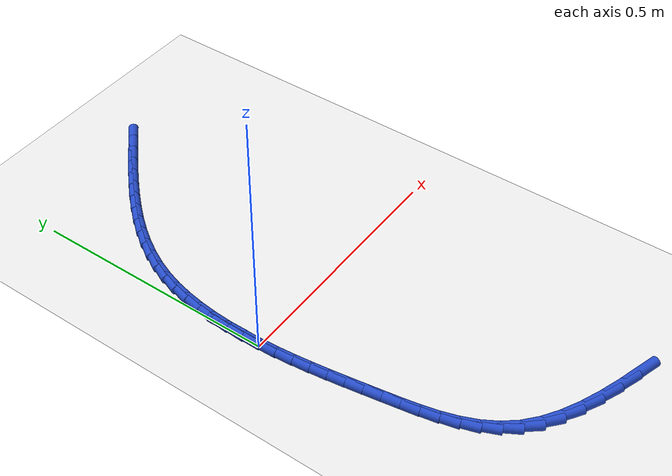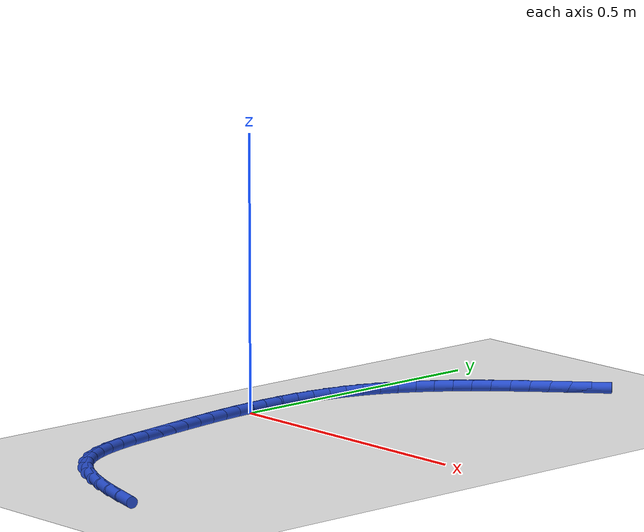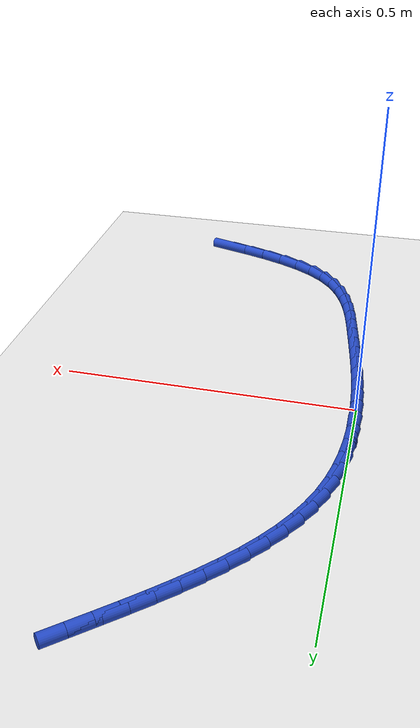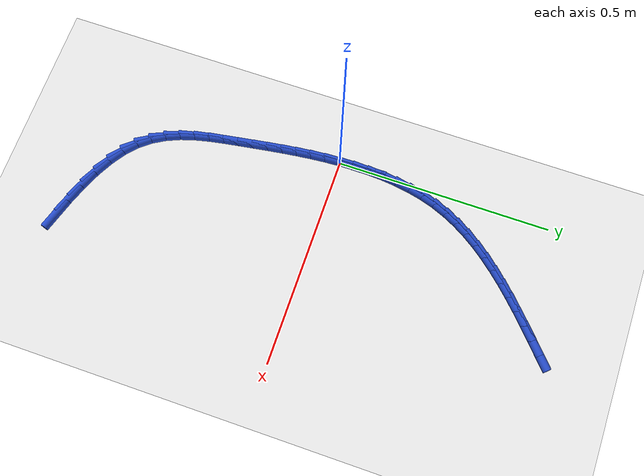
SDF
<sdf version="1.6">
 <world name="default">
  <model name="ground_plane">
   <static>1</static>
   <link name="link">
    <collision name="collision">
     <geometry><plane><normal>0 0 1</normal><size>100 100</size></plane></geometry>
     <surface><friction><ode><mu>100</mu><mu2>50</mu2></ode></friction></surface>
    </collision>
    <visual name="visual">
     <cast_shadows>0</cast_shadows>
     <geometry><plane><normal>0 0 1</normal><size>100 100</size></plane></geometry>
     <material>
      <script><uri>file://media/materials/scripts/gazebo.material</uri><name>Gazebo/WhiteGlow</name></script>
     </material>
    </visual>
   </link>
  </model>
  <model name="line">
   <link name="link_0">
    <pose>1.214306433183765e-17 -5.551115123125783e-17 0.01 0 1.57 -1.544926847063853</pose>
    <collision name="collision">
     <geometry><cylinder><radius>0.01</radius><length>0.08</length></cylinder></geometry>
    </collision>
    <visual name="visual">
     <material>
      <script><name>Gazebo/Blue</name><uri>file://media/materials/scripts/gazebo.material</uri></script>
     </material>
     <geometry><cylinder><radius>0.01</radius><length>0.08</length></cylinder></geometry>
    </visual>
   </link>
   <link name="link_1">
    <pose>-0.0008951007464306239 0.03459292845237338 0.01 0 1.57 1.5587647873589767</pose>
    <collision name="collision">
     <geometry><cylinder><radius>0.01</radius><length>0.08</length></cylinder></geometry>
    </collision>
    <visual name="visual">
     <material>
      <script><name>Gazebo/Blue</name><uri>file://media/materials/scripts/gazebo.material</uri></script>
     </material>
     <geometry><cylinder><radius>0.01</radius><length>0.08</length></cylinder></geometry>
    </visual>
   </link>
   <link name="link_2">
    <pose>-0.00047655189180878695 0.06937888918215812 0.01 0 1.57 1.5151115104201591</pose>
    <collision name="collision">
     <geometry><cylinder><radius>0.01</radius><length>0.08</length></cylinder></geometry>
    </collision>
    <visual name="visual">
     <material>
      <script><name>Gazebo/Blue</name><uri>file://media/materials/scripts/gazebo.material</uri></script>
     </material>
     <geometry><cylinder><radius>0.01</radius><length>0.08</length></cylinder></geometry>
    </visual>
   </link>
   <link name="link_3">
    <pose>0.0014596562780407518 0.10411378853131274 0.01 0 1.57 1.464982097356111</pose>
    <collision name="collision">
     <geometry><cylinder><radius>0.01</radius><length>0.08</length></cylinder></geometry>
    </collision>
    <visual name="visual">
     <material>
      <script><name>Gazebo/Blue</name><uri>file://media/materials/scripts/gazebo.material</uri></script>
     </material>
     <geometry><cylinder><radius>0.01</radius><length>0.08</length></cylinder></geometry>
    </visual>
   </link>
   <link name="link_4">
    <pose>0.0051175334772932245 0.13855353284179592 0.01 0 1.57 1.407557626411429</pose>
    <collision name="collision">
     <geometry><cylinder><radius>0.01</radius><length>0.08</length></cylinder></geometry>
    </collision>
    <visual name="visual">
     <material>
      <script><name>Gazebo/Blue</name><uri>file://media/materials/scripts/gazebo.material</uri></script>
     </material>
     <geometry><cylinder><radius>0.01</radius><length>0.08</length></cylinder></geometry>
    </visual>
   </link>
   <link name="link_5">
    <pose>0.010701089420123865 0.1724540284555663 0.01 0 1.57 1.3419679618454743</pose>
    <collision name="collision">
     <geometry><cylinder><radius>0.01</radius><length>0.08</length></cylinder></geometry>
    </collision>
    <visual name="visual">
     <material>
      <script><name>Gazebo/Blue</name><uri>file://media/materials/scripts/gazebo.material</uri></script>
     </material>
     <geometry><cylinder><radius>0.01</radius><length>0.08</length></cylinder></geometry>
    </visual>
   </link>
   <link name="link_6">
    <pose>0.018414333820707895 0.20557118171458244 0.01 0 1.57 1.2673748061256054</pose>
    <collision name="collision">
     <geometry><cylinder><radius>0.01</radius><length>0.08</length></cylinder></geometry>
    </collision>
    <visual name="visual">
     <material>
      <script><name>Gazebo/Blue</name><uri>file://media/materials/scripts/gazebo.material</uri></script>
     </material>
     <geometry><cylinder><radius>0.01</radius><length>0.08</length></cylinder></geometry>
    </visual>
   </link>
   <link name="link_7">
    <pose>0.02846127639322056 0.23766089896080309 0.01 0 1.57 1.18531420956852</pose>
    <collision name="collision">
     <geometry><cylinder><radius>0.01</radius><length>0.08</length></cylinder></geometry>
    </collision>
    <visual name="visual">
     <material>
      <script><name>Gazebo/Blue</name><uri>file://media/materials/scripts/gazebo.material</uri></script>
     </material>
     <geometry><cylinder><radius>0.01</radius><length>0.08</length></cylinder></geometry>
    </visual>
   </link>
   <link name="link_8">
    <pose>0.04098678274133821 0.26852836624558746 0.01 0 1.57 1.106307680856895</pose>
    <collision name="collision">
     <geometry><cylinder><radius>0.01</radius><length>0.08</length></cylinder></geometry>
    </collision>
    <visual name="visual">
     <material>
      <script><name>Gazebo/Blue</name><uri>file://media/materials/scripts/gazebo.material</uri></script>
     </material>
     <geometry><cylinder><radius>0.01</radius><length>0.08</length></cylinder></geometry>
    </visual>
   </link>
   <link name="link_9">
    <pose>0.055858635920563095 0.2982096387184829 0.01 0 1.57 1.03435345917394</pose>
    <collision name="collision">
     <geometry><cylinder><radius>0.01</radius><length>0.08</length></cylinder></geometry>
    </collision>
    <visual name="visual">
     <material>
      <script><name>Gazebo/Blue</name><uri>file://media/materials/scripts/gazebo.material</uri></script>
     </material>
     <geometry><cylinder><radius>0.01</radius><length>0.08</length></cylinder></geometry>
    </visual>
   </link>
   <link name="link_10">
    <pose>0.07286354577327306 0.3268083228769097 0.01 0 1.57 0.970081321235818</pose>
    <collision name="collision">
     <geometry><cylinder><radius>0.01</radius><length>0.08</length></cylinder></geometry>
    </collision>
    <visual name="visual">
     <material>
      <script><name>Gazebo/Blue</name><uri>file://media/materials/scripts/gazebo.material</uri></script>
     </material>
     <geometry><cylinder><radius>0.01</radius><length>0.08</length></cylinder></geometry>
    </visual>
   </link>
   <link name="link_11">
    <pose>0.09178821202149028 0.3544280336507117 0.01 0 1.57 0.9137269030067781</pose>
    <collision name="collision">
     <geometry><cylinder><radius>0.01</radius><length>0.08</length></cylinder></geometry>
    </collision>
    <visual name="visual">
     <material>
      <script><name>Gazebo/Blue</name><uri>file://media/materials/scripts/gazebo.material</uri></script>
     </material>
     <geometry><cylinder><radius>0.01</radius><length>0.08</length></cylinder></geometry>
    </visual>
   </link>
   <link name="link_12">
    <pose>0.11241933438723695 0.38117238596973274 0.01 0 1.57 0.8652401237360117</pose>
    <collision name="collision">
     <geometry><cylinder><radius>0.01</radius><length>0.08</length></cylinder></geometry>
    </collision>
    <visual name="visual">
     <material>
      <script><name>Gazebo/Blue</name><uri>file://media/materials/scripts/gazebo.material</uri></script>
     </material>
     <geometry><cylinder><radius>0.01</radius><length>0.08</length></cylinder></geometry>
    </visual>
   </link>
   <link name="link_13">
    <pose>0.13454361259253514 0.40714499476381644 0.01 0 1.57 0.8243929727467321</pose>
    <collision name="collision">
     <geometry><cylinder><radius>0.01</radius><length>0.08</length></cylinder></geometry>
    </collision>
    <visual name="visual">
     <material>
      <script><name>Gazebo/Blue</name><uri>file://media/materials/scripts/gazebo.material</uri></script>
     </material>
     <geometry><cylinder><radius>0.01</radius><length>0.08</length></cylinder></geometry>
    </visual>
   </link>
   <link name="link_14">
    <pose>0.157947746359407 0.4324494749628068 0.01 0 1.57 0.7908700432687833</pose>
    <collision name="collision">
     <geometry><cylinder><radius>0.01</radius><length>0.08</length></cylinder></geometry>
    </collision>
    <visual name="visual">
     <material>
      <script><name>Gazebo/Blue</name><uri>file://media/materials/scripts/gazebo.material</uri></script>
     </material>
     <geometry><cylinder><radius>0.01</radius><length>0.08</length></cylinder></geometry>
    </visual>
   </link>
   <link name="link_15">
    <pose>0.18241843540987476 0.4571894414965475 0.01 0 1.57 0.76433650375186</pose>
    <collision name="collision">
     <geometry><cylinder><radius>0.01</radius><length>0.08</length></cylinder></geometry>
    </collision>
    <visual name="visual">
     <material>
      <script><name>Gazebo/Blue</name><uri>file://media/materials/scripts/gazebo.material</uri></script>
     </material>
     <geometry><cylinder><radius>0.01</radius><length>0.08</length></cylinder></geometry>
    </visual>
   </link>
   <link name="link_16">
    <pose>0.2077423794659606 0.4814685092948824 0.01 0 1.57 0.7444851171360718</pose>
    <collision name="collision">
     <geometry><cylinder><radius>0.01</radius><length>0.08</length></cylinder></geometry>
    </collision>
    <visual name="visual">
     <material>
      <script><name>Gazebo/Blue</name><uri>file://media/materials/scripts/gazebo.material</uri></script>
     </material>
     <geometry><cylinder><radius>0.01</radius><length>0.08</length></cylinder></geometry>
    </visual>
   </link>
   <link name="link_17">
    <pose>0.2337062782496866 0.5053902932876554 0.01 0 1.57 0.7310667381546199</pose>
    <collision name="collision">
     <geometry><cylinder><radius>0.01</radius><length>0.08</length></cylinder></geometry>
    </collision>
    <visual name="visual">
     <material>
      <script><name>Gazebo/Blue</name><uri>file://media/materials/scripts/gazebo.material</uri></script>
     </material>
     <geometry><cylinder><radius>0.01</radius><length>0.08</length></cylinder></geometry>
    </visual>
   </link>
   <link name="link_18">
    <pose>0.26009683148307483 0.52905840840471 0.01 0 1.57 0.7239090352658616</pose>
    <collision name="collision">
     <geometry><cylinder><radius>0.01</radius><length>0.08</length></cylinder></geometry>
    </collision>
    <visual name="visual">
     <material>
      <script><name>Gazebo/Blue</name><uri>file://media/materials/scripts/gazebo.material</uri></script>
     </material>
     <geometry><cylinder><radius>0.01</radius><length>0.08</length></cylinder></geometry>
    </visual>
   </link>
   <link name="link_19">
    <pose>0.2867007388881476 0.5525764695758903 0.01 0 1.57 0.722927332170416</pose>
    <collision name="collision">
     <geometry><cylinder><radius>0.01</radius><length>0.08</length></cylinder></geometry>
    </collision>
    <visual name="visual">
     <material>
      <script><name>Gazebo/Blue</name><uri>file://media/materials/scripts/gazebo.material</uri></script>
     </material>
     <geometry><cylinder><radius>0.01</radius><length>0.08</length></cylinder></geometry>
    </visual>
   </link>
   <link name="link_240">
    <pose>0.33338548705270016 -0.5713293198169863 0.01 0 1.57 -0.30031011118804646</pose>
    <collision name="collision">
     <geometry><cylinder><radius>0.01</radius><length>0.08</length></cylinder></geometry>
    </collision>
    <visual name="visual">
     <material>
      <script><name>Gazebo/Blue</name><uri>file://media/materials/scripts/gazebo.material</uri></script>
     </material>
     <geometry><cylinder><radius>0.01</radius><length>0.08</length></cylinder></geometry>
    </visual>
   </link>
   <link name="link_241">
    <pose>0.28970771189138583 -0.5578033581630745 0.01 0 1.57 -0.34139983252278583</pose>
    <collision name="collision">
     <geometry><cylinder><radius>0.01</radius><length>0.08</length></cylinder></geometry>
    </collision>
    <visual name="visual">
     <material>
      <script><name>Gazebo/Blue</name><uri>file://media/materials/scripts/gazebo.material</uri></script>
     </material>
     <geometry><cylinder><radius>0.01</radius><length>0.08</length></cylinder></geometry>
    </visual>
   </link>
   <link name="link_242">
    <pose>0.24765160760734883 -0.5428602921916693 0.01 0 1.57 -0.3989693948722473</pose>
    <collision name="collision">
     <geometry><cylinder><radius>0.01</radius><length>0.08</length></cylinder></geometry>
    </collision>
    <visual name="visual">
     <material>
      <script><name>Gazebo/Blue</name><uri>file://media/materials/scripts/gazebo.material</uri></script>
     </material>
     <geometry><cylinder><radius>0.01</radius><length>0.08</length></cylinder></geometry>
    </visual>
   </link>
   <link name="link_243">
    <pose>0.2080305556108389 -0.5261568919849919 0.01 0 1.57 -0.4772052772116582</pose>
    <collision name="collision">
     <geometry><cylinder><radius>0.01</radius><length>0.08</length></cylinder></geometry>
    </collision>
    <visual name="visual">
     <material>
      <script><name>Gazebo/Blue</name><uri>file://media/materials/scripts/gazebo.material</uri></script>
     </material>
     <geometry><cylinder><radius>0.01</radius><length>0.08</length></cylinder></geometry>
    </visual>
   </link>
   <link name="link_244">
    <pose>0.1716579373121056 -0.5073499276252631 0.01 0 1.57 -0.5818327769057862</pose>
    <collision name="collision">
     <geometry><cylinder><radius>0.01</radius><length>0.08</length></cylinder></geometry>
    </collision>
    <visual name="visual">
     <material>
      <script><name>Gazebo/Blue</name><uri>file://media/materials/scripts/gazebo.material</uri></script>
     </material>
     <geometry><cylinder><radius>0.01</radius><length>0.08</length></cylinder></geometry>
    </visual>
   </link>
   <link name="link_245">
    <pose>0.1393471341213978 -0.4860961691947033 0.01 0 1.57 -0.7195972061733653</pose>
    <collision name="collision">
     <geometry><cylinder><radius>0.01</radius><length>0.08</length></cylinder></geometry>
    </collision>
    <visual name="visual">
     <material>
      <script><name>Gazebo/Blue</name><uri>file://media/materials/scripts/gazebo.material</uri></script>
     </material>
     <geometry><cylinder><radius>0.01</radius><length>0.08</length></cylinder></geometry>
    </visual>
   </link>
   <link name="link_246">
    <pose>0.11191121615702132 -0.46205255133405543 0.01 0 1.57 -0.8844464568836002</pose>
    <collision name="collision">
     <geometry><cylinder><radius>0.01</radius><length>0.08</length></cylinder></geometry>
    </collision>
    <visual name="visual">
     <material>
      <script><name>Gazebo/Blue</name><uri>file://media/materials/scripts/gazebo.material</uri></script>
     </material>
     <geometry><cylinder><radius>0.01</radius><length>0.08</length></cylinder></geometry>
    </visual>
   </link>
   <link name="link_247">
    <pose>0.08980349994138774 -0.43506618552743836 0.01 0 1.57 -1.0387919043585212</pose>
    <collision name="collision">
     <geometry><cylinder><radius>0.01</radius><length>0.08</length></cylinder></geometry>
    </collision>
    <visual name="visual">
     <material>
      <script><name>Gazebo/Blue</name><uri>file://media/materials/scripts/gazebo.material</uri></script>
     </material>
     <geometry><cylinder><radius>0.01</radius><length>0.08</length></cylinder></geometry>
    </visual>
   </link>
   <link name="link_248">
    <pose>0.07242445377840216 -0.4055407512906413 0.01 0 1.57 -1.1681558380158101</pose>
    <collision name="collision">
     <geometry><cylinder><radius>0.01</radius><length>0.08</length></cylinder></geometry>
    </collision>
    <visual name="visual">
     <material>
      <script><name>Gazebo/Blue</name><uri>file://media/materials/scripts/gazebo.material</uri></script>
     </material>
     <geometry><cylinder><radius>0.01</radius><length>0.08</length></cylinder></geometry>
    </visual>
   </link>
   <link name="link_249">
    <pose>0.05898295471390981 -0.37398120918596034 0.01 0 1.57 -1.2691547961940361</pose>
    <collision name="collision">
     <geometry><cylinder><radius>0.01</radius><length>0.08</length></cylinder></geometry>
    </collision>
    <visual name="visual">
     <material>
      <script><name>Gazebo/Blue</name><uri>file://media/materials/scripts/gazebo.material</uri></script>
     </material>
     <geometry><cylinder><radius>0.01</radius><length>0.08</length></cylinder></geometry>
    </visual>
   </link>
   <link name="link_250">
    <pose>0.04868787979375601 -0.3408925197756915 0.01 0 1.57 -1.342117628590862</pose>
    <collision name="collision">
     <geometry><cylinder><radius>0.01</radius><length>0.08</length></cylinder></geometry>
    </collision>
    <visual name="visual">
     <material>
      <script><name>Gazebo/Blue</name><uri>file://media/materials/scripts/gazebo.material</uri></script>
     </material>
     <geometry><cylinder><radius>0.01</radius><length>0.08</length></cylinder></geometry>
    </visual>
   </link>
   <link name="link_251">
    <pose>0.040748106063786045 -0.3067796436221313 0.01 0 1.57 -1.3887397920740827</pose>
    <collision name="collision">
     <geometry><cylinder><radius>0.01</radius><length>0.08</length></cylinder></geometry>
    </collision>
    <visual name="visual">
     <material>
      <script><name>Gazebo/Blue</name><uri>file://media/materials/scripts/gazebo.material</uri></script>
     </material>
     <geometry><cylinder><radius>0.01</radius><length>0.08</length></cylinder></geometry>
    </visual>
   </link>
   <link name="link_252">
    <pose>0.034372510569845 -0.27214754128757446 0.01 0 1.57 -1.4104783950246378</pose>
    <collision name="collision">
     <geometry><cylinder><radius>0.01</radius><length>0.08</length></cylinder></geometry>
    </collision>
    <visual name="visual">
     <material>
      <script><name>Gazebo/Blue</name><uri>file://media/materials/scripts/gazebo.material</uri></script>
     </material>
     <geometry><cylinder><radius>0.01</radius><length>0.08</length></cylinder></geometry>
    </visual>
   </link>
   <link name="link_253">
    <pose>0.028769993278331553 -0.2375011579891918 0.01 0 1.57 -1.413496989971405</pose>
    <collision name="collision">
     <geometry><cylinder><radius>0.01</radius><length>0.08</length></cylinder></geometry>
    </collision>
    <visual name="visual">
     <material>
      <script><name>Gazebo/Blue</name><uri>file://media/materials/scripts/gazebo.material</uri></script>
     </material>
     <geometry><cylinder><radius>0.01</radius><length>0.08</length></cylinder></geometry>
    </visual>
   </link>
   <link name="link_254">
    <pose>0.02333306853936996 -0.20322251057753726 0.01 0 1.57 -1.4173311850333505</pose>
    <collision name="collision">
     <geometry><cylinder><radius>0.01</radius><length>0.08</length></cylinder></geometry>
    </collision>
    <visual name="visual">
     <material>
      <script><name>Gazebo/Blue</name><uri>file://media/materials/scripts/gazebo.material</uri></script>
     </material>
     <geometry><cylinder><radius>0.01</radius><length>0.08</length></cylinder></geometry>
    </visual>
   </link>
   <link name="link_255">
    <pose>0.018081786474317088 -0.1692734857053902 0.01 0 1.57 -1.4262689390594432</pose>
    <collision name="collision">
     <geometry><cylinder><radius>0.01</radius><length>0.08</length></cylinder></geometry>
    </collision>
    <visual name="visual">
     <material>
      <script><name>Gazebo/Blue</name><uri>file://media/materials/scripts/gazebo.material</uri></script>
     </material>
     <geometry><cylinder><radius>0.01</radius><length>0.08</length></cylinder></geometry>
    </visual>
   </link>
   <link name="link_256">
    <pose>0.013170146618667708 -0.13552629196025726 0.01 0 1.57 -1.440339102869203</pose>
    <collision name="collision">
     <geometry><cylinder><radius>0.01</radius><length>0.08</length></cylinder></geometry>
    </collision>
    <visual name="visual">
     <material>
      <script><name>Gazebo/Blue</name><uri>file://media/materials/scripts/gazebo.material</uri></script>
     </material>
     <geometry><cylinder><radius>0.01</radius><length>0.08</length></cylinder></geometry>
    </visual>
   </link>
   <link name="link_257">
    <pose>0.00875214850791656 -0.10185313792964515 0.01 0 1.57 -1.4594677834065912</pose>
    <collision name="collision">
     <geometry><cylinder><radius>0.01</radius><length>0.08</length></cylinder></geometry>
    </collision>
    <visual name="visual">
     <material>
      <script><name>Gazebo/Blue</name><uri>file://media/materials/scripts/gazebo.material</uri></script>
     </material>
     <geometry><cylinder><radius>0.01</radius><length>0.08</length></cylinder></geometry>
    </visual>
   </link>
   <link name="link_258">
    <pose>0.004981791677558399 -0.0681262322010605 0.01 0 1.57 -1.4834680773679105</pose>
    <collision name="collision">
     <geometry><cylinder><radius>0.01</radius><length>0.08</length></cylinder></geometry>
    </collision>
    <visual name="visual">
     <material>
      <script><name>Gazebo/Blue</name><uri>file://media/materials/scripts/gazebo.material</uri></script>
     </material>
     <geometry><cylinder><radius>0.01</radius><length>0.08</length></cylinder></geometry>
    </visual>
   </link>
   <link name="link_259">
    <pose>0.0020130756630879704 -0.03421778336200995 0.01 0 1.57 -1.5120327898565569</pose>
    <collision name="collision">
     <geometry><cylinder><radius>0.01</radius><length>0.08</length></cylinder></geometry>
    </collision>
    <visual name="visual">
     <material>
      <script><name>Gazebo/Blue</name><uri>file://media/materials/scripts/gazebo.material</uri></script>
     </material>
     <geometry><cylinder><radius>0.01</radius><length>0.08</length></cylinder></geometry>
    </visual>
   </link>
   <link name="link_260">
    <pose>2.2985086056692694e-17 -1.249000902703301e-16 0.01 0 1.57 -1.5447327411696186</pose>
    <collision name="collision">
     <geometry><cylinder><radius>0.01</radius><length>0.08</length></cylinder></geometry>
    </collision>
    <visual name="visual">
     <material>
      <script><name>Gazebo/Blue</name><uri>file://media/materials/scripts/gazebo.material</uri></script>
     </material>
     <geometry><cylinder><radius>0.01</radius><length>0.08</length></cylinder></geometry>
    </visual>
   </link>
   <link name="link_261">
    <pose>-0.0009034357762106927 0.03465490929746233 0.01 0 1.57 1.5605693858232192</pose>
    <collision name="collision">
     <geometry><cylinder><radius>0.01</radius><length>0.08</length></cylinder></geometry>
    </collision>
    <visual name="visual">
     <material>
      <script><name>Gazebo/Blue</name><uri>file://media/materials/scripts/gazebo.material</uri></script>
     </material>
     <geometry><cylinder><radius>0.01</radius><length>0.08</length></cylinder></geometry>
    </visual>
   </link>
   <link name="link_262">
    <pose>-0.0005432321300494272 0.06987473594287077 0.01 0 1.57 -1.5630221122859427</pose>
    <collision name="collision">
     <geometry><cylinder><radius>0.01</radius><length>0.08</length></cylinder></geometry>
    </collision>
    <visual name="visual">
     <material>
      <script><name>Gazebo/Blue</name><uri>file://media/materials/scripts/gazebo.material</uri></script>
     </material>
     <geometry><cylinder><radius>0.01</radius><length>0.08</length></cylinder></geometry>
    </visual>
   </link>
  </model>
 </world>
</sdf>
